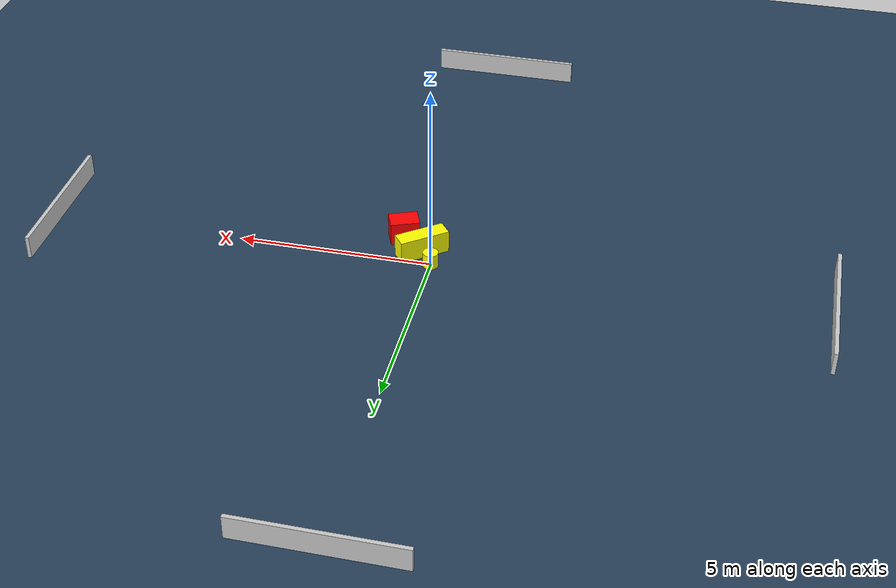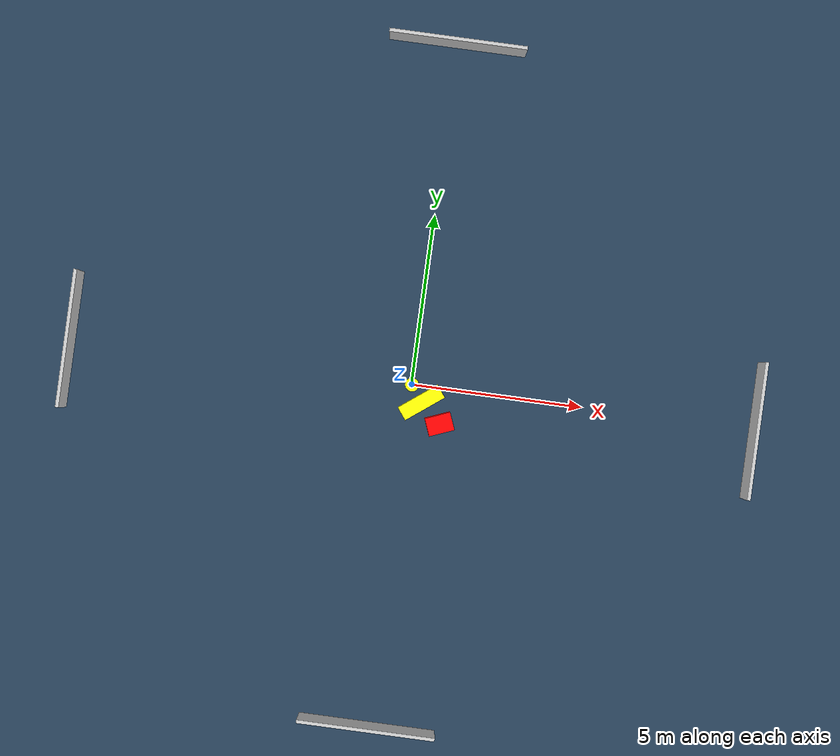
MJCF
<?xml version="1.0" ?>
<mujoco model="generated_environment">
  <option timestep="0.01" integrator="RK4" cone="elliptic"/>
  <default>
    <geom density="1"/>
  </default>
  <asset>
    <texture builtin="gradient" height="3072" name="skybox" rgb1="0.3 0.5 0.7" rgb2="0 0 0" type="skybox" width="512"/>
    <texture builtin="checker" height="300" name="groundplane" rgb1="0.2 0.3 0.4" rgb2="0.1 0.2 0.3" type="2d" width="300"/>
    <material name="groundplane" reflectance="0.2" texrepeat="5 5" texture="groundplane"/>
  </asset>
  <worldbody>
    <light dir="0 0 -1" directional="true" pos="0 0 1.5"/>
    <geom condim="3" friction="0.5 0.005 0.001" material="groundplane" name="floor" pos="0 0 0" size="0 0 0.05" type="plane"/>
    <body name="walls">
      <geom name="wall_1" condim="4" pos="-10.0 0.0 0.3" rgba="0.800000011920929 0.800000011920929 0.800000011920929 1.0" size="0.05 2.0 0.3" type="box"/>
      <geom name="wall_2" condim="4" pos="10.0 0.0 0.3" rgba="0.800000011920929 0.800000011920929 0.800000011920929 1.0" size="0.05 2.0 0.3" type="box"/>
      <geom name="wall_3" condim="4" pos="0.0 -10.0 0.3" rgba="0.800000011920929 0.800000011920929 0.800000011920929 1.0" size="2.0 0.05 0.3" type="box"/>
      <geom name="wall_4" condim="4" pos="0.0 10.0 0.3" rgba="0.800000011920929 0.800000011920929 0.800000011920929 1.0" size="2.0 0.05 0.3" type="box"/>
    </body>
    <body name="robot">
      <joint name="joint_x" type="slide" pos="0 0 0" axis="1 0 0"/>
      <joint name="joint_y" type="slide" pos="0 0 0" axis="0 1 0"/>
      <geom name="robot" type="cylinder" pos="0.0 0.0 0.2" size="0.2 0.2 0.0" mass="5.0" friction="1.0 0.005 0.0001" condim="4" rgba="1.0 1.0 0.0 1.0"/>
    </body>
    <body name="obstacle_1_movable">
      <geom name="obstacle_1_movable" condim="4" pos="0.33443628260849595 -0.4717706078165776 0.3" euler="0 0 307.2663635250472" friction="0.0 0.005 0.001" rgba="1.0 1.0 0.0 1.0" size="0.21415395944137536 0.6560257655819821 0.3" type="box" mass="0.1"/>
      <joint type="free"/>
    </body>
    <body name="obstacle_2_static">
      <geom name="obstacle_2_static" condim="4" pos="0.9356880546678231 -1.01978352197814 0.3" euler="0 0 111.7552217170944" friction="0.0 0.005 0.001" rgba="1.0 0.0 0.0 1.0" size="0.26401739432919186 0.3779663707364942 0.3" type="box"/>
    </body>
  </worldbody>
  <actuator>
    <motor name="actuator_x" joint="joint_x" gear="1" ctrlrange="-1 1"/>
    <motor name="actuator_y" joint="joint_y" gear="1" ctrlrange="-1 1"/>
  </actuator>
</mujoco>
